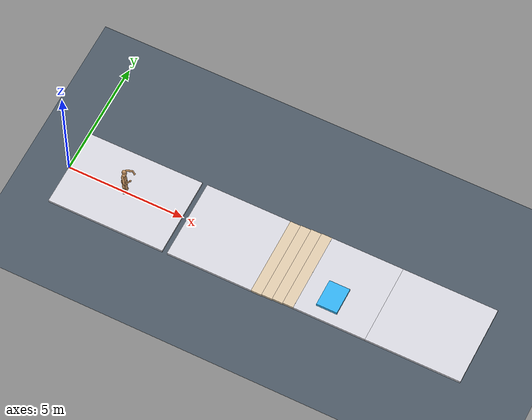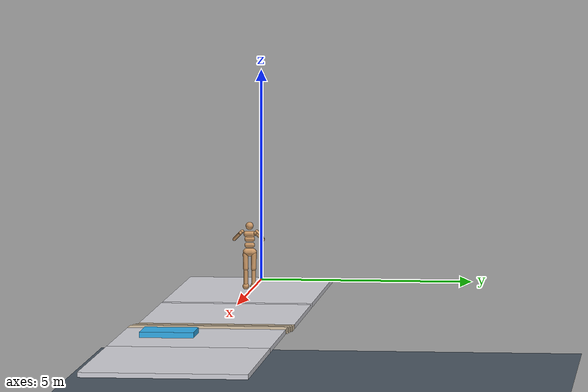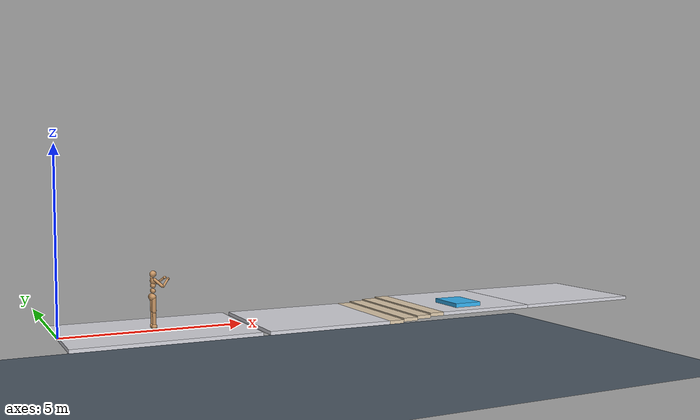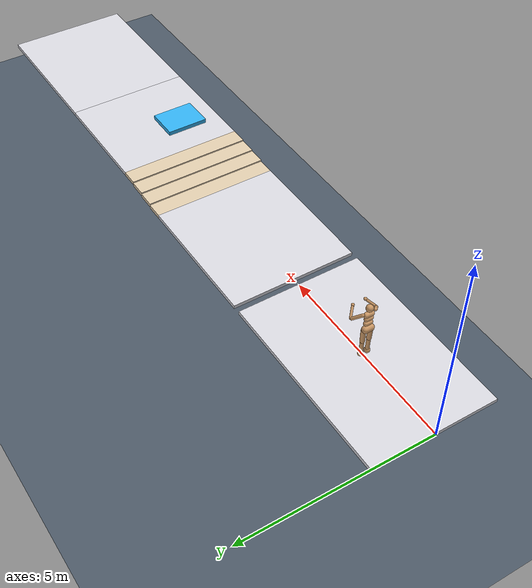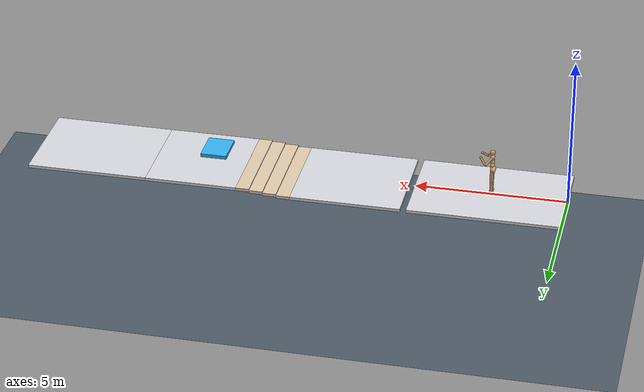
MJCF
<mujoco model="parkour_humanoid">
    <compiler angle="degree" inertiafromgeom="true"/>
    <default>
        <joint armature="1" damping="1" limited="true"/>
        <geom conaffinity="1" condim="3" friction="1.2 .1 .1" margin="0.001" material="geom" rgba="0.8 0.6 .4 1"/>
        <motor ctrllimited="true" ctrlrange="-.4 .4"/>
    </default>
    <option integrator="RK4" timestep="0.003"/>
    <visual>
        <headlight ambient="0.5 0.5 0.5" diffuse="0.8 0.8 0.8" specular="0.2 0.2 0.2"/>
        <map force="0.1" znear="0.05" zfar="100.0"/>
        <rgba haze="0.15 0.25 0.35 1"/>
        <quality shadowsize="2048"/>
        <global offwidth="640" offheight="480"/>
    </visual>
    <asset>
        <texture builtin="gradient" height="100" rgb1=".55 .70 .85" rgb2=".25 .40 .55" type="skybox" width="100"/>
        <texture builtin="flat" height="1278" mark="cross" markrgb="1 1 1" name="texgeom" random="0.01" rgb1="0.8 0.6 0.4" rgb2="0.8 0.6 0.4" type="cube" width="127"/>
        <texture builtin="checker" height="100" name="texplane" rgb1="0.2 0.25 0.3" rgb2="0.3 0.35 0.4" type="2d" width="100"/>
        <texture name="texterrain" builtin="flat" rgb1="0.85 0.85 0.88" rgb2="0.75 0.75 0.78" type="cube" width="127" height="127"/>
        <material name="MatPlane" reflectance="0.2" shininess="0.5" specular="0.5" texrepeat="60 60" texture="texplane"/>
        <material name="geom" texture="texgeom" texuniform="true"/>
        <material name="terrain_mat" texture="texterrain" texuniform="true" rgba="0.85 0.85 0.88 1"/>
    </asset>
    <worldbody>
        <light directional="true" diffuse="0.9 0.9 0.9" specular="0.3 0.3 0.3" pos="0 0 8" dir="0 0 -1"/>
        <light directional="true" diffuse="0.6 0.6 0.6" specular="0.2 0.2 0.2" pos="10 -10 10" dir="-0.3 0.5 -1"/>
        <!-- Death plane: gap / fall detection (in group 2 for raycast) -->
        <geom name="death_plane" type="plane" pos="0 0 -2" size="200 200 0.1" group="2" rgba="0.3 0.35 0.4 1" material="MatPlane"/>
        <!-- Procedural terrain geoms directly in worldbody (group 2) -->
        <geom name="t_0_0" type="box" pos="2.5000 0.0000 0.0000" size="2.5000 1.7000 0.0500" group="2" rgba="0.85 0.85 0.88 1"/>
        <geom name="t_2_0" type="box" pos="7.0233 0.0000 0.0000" size="1.8162 1.7000 0.0500" group="2" rgba="0.85 0.85 0.88 1"/>
        <geom name="t_3_0" type="box" pos="9.0645 0.0000 0.0000" size="0.2250 1.7000 0.0500" group="2" rgba="0.88 0.80 0.68 1"/>
        <geom name="t_3_1" type="box" pos="9.5145 0.0000 0.0400" size="0.2250 1.7000 0.0500" group="2" rgba="0.88 0.80 0.68 1"/>
        <geom name="t_3_2" type="box" pos="9.9645 0.0000 0.0800" size="0.2250 1.7000 0.0500" group="2" rgba="0.88 0.80 0.68 1"/>
        <geom name="t_3_3" type="box" pos="10.4145 0.0000 0.1200" size="0.2250 1.7000 0.0500" group="2" rgba="0.88 0.80 0.68 1"/>
        <geom name="t_4_0" type="box" pos="12.1607 0.0000 0.1200" size="1.5211 1.7000 0.0500" group="2" rgba="0.85 0.85 0.88 1"/>
        <geom name="t_4_1" type="box" pos="11.8276 -0.6451 0.2297" size="0.4370 0.5726 0.0597" group="2" rgba="0.20 0.70 0.95 1"/>
        <geom name="t_5_0" type="box" pos="15.6818 0.0000 0.1200" size="2.0000 1.7000 0.0500" group="2" rgba="0.85 0.85 0.88 1"/>
        <!-- Humanoid body hierarchy (13 bodies, identical to Humanoid-v5) -->
        <body name="torso" pos="2.5 0 1.35">
            <camera name="track" mode="trackcom" pos="0 -4.5 0" xyaxes="1 0 0 0 0 1"/>
            <joint armature="0" damping="0" limited="false" name="root" pos="0 0 0" stiffness="0" type="free"/>
            <geom fromto="0 -.07 0 0 .07 0" name="torso1" size="0.07" type="capsule"/>
            <geom name="head" pos="0 0 .19" size=".09" type="sphere" user="258"/>
            <geom fromto="-.01 -.06 -.12 -.01 .06 -.12" name="uwaist" size="0.06" type="capsule"/>
            <body name="lwaist" pos="-.01 0 -0.260" quat="1.000 0 -0.002 0">
                <geom fromto="0 -.06 0 0 .06 0" name="lwaist" size="0.06" type="capsule"/>
                <joint armature="0.02" axis="0 0 1" damping="5" name="abdomen_z" pos="0 0 0.065" range="-45 45" stiffness="20" type="hinge"/>
                <joint armature="0.02" axis="0 1 0" damping="5" name="abdomen_y" pos="0 0 0.065" range="-75 30" stiffness="10" type="hinge"/>
                <body name="pelvis" pos="0 0 -0.165" quat="1.000 0 -0.002 0">
                    <joint armature="0.02" axis="1 0 0" damping="5" name="abdomen_x" pos="0 0 0.1" range="-35 35" stiffness="10" type="hinge"/>
                    <geom fromto="-.02 -.07 0 -.02 .07 0" name="butt" size="0.09" type="capsule"/>
                    <body name="right_thigh" pos="0 -0.1 -0.04">
                        <joint armature="0.01" axis="1 0 0" damping="5" name="right_hip_x" pos="0 0 0" range="-25 5" stiffness="10" type="hinge"/>
                        <joint armature="0.01" axis="0 0 1" damping="5" name="right_hip_z" pos="0 0 0" range="-60 35" stiffness="10" type="hinge"/>
                        <joint armature="0.0080" axis="0 1 0" damping="5" name="right_hip_y" pos="0 0 0" range="-110 20" stiffness="20" type="hinge"/>
                        <geom fromto="0 0 0 0 0.01 -.34" name="right_thigh1" size="0.06" type="capsule"/>
                        <body name="right_shin" pos="0 0.01 -0.403">
                            <joint armature="0.0060" axis="0 -1 0" name="right_knee" pos="0 0 .02" range="-160 -2" type="hinge"/>
                            <geom fromto="0 0 0 0 0 -.3" name="right_shin1" size="0.049" type="capsule"/>
                            <body name="right_foot" pos="0 0 -0.45">
                                <geom name="right_foot" pos="0 0 0.1" size="0.075" type="sphere" user="0"/>
                            </body>
                        </body>
                    </body>
                    <body name="left_thigh" pos="0 0.1 -0.04">
                        <joint armature="0.01" axis="-1 0 0" damping="5" name="left_hip_x" pos="0 0 0" range="-25 5" stiffness="10" type="hinge"/>
                        <joint armature="0.01" axis="0 0 -1" damping="5" name="left_hip_z" pos="0 0 0" range="-60 35" stiffness="10" type="hinge"/>
                        <joint armature="0.01" axis="0 1 0" damping="5" name="left_hip_y" pos="0 0 0" range="-110 20" stiffness="20" type="hinge"/>
                        <geom fromto="0 0 0 0 -0.01 -.34" name="left_thigh1" size="0.06" type="capsule"/>
                        <body name="left_shin" pos="0 -0.01 -0.403">
                            <joint armature="0.0060" axis="0 -1 0" name="left_knee" pos="0 0 .02" range="-160 -2" stiffness="1" type="hinge"/>
                            <geom fromto="0 0 0 0 0 -.3" name="left_shin1" size="0.049" type="capsule"/>
                            <body name="left_foot" pos="0 0 -0.45">
                                <geom name="left_foot" type="sphere" size="0.075" pos="0 0 0.1" user="0"/>
                            </body>
                        </body>
                    </body>
                </body>
            </body>
            <body name="right_upper_arm" pos="0 -0.17 0.06">
                <joint armature="0.0068" axis="2 1 1" name="right_shoulder1" pos="0 0 0" range="-85 60" stiffness="1" type="hinge"/>
                <joint armature="0.0051" axis="0 -1 1" name="right_shoulder2" pos="0 0 0" range="-85 60" stiffness="1" type="hinge"/>
                <geom fromto="0 0 0 .16 -.16 -.16" name="right_uarm1" size="0.04 0.16" type="capsule"/>
                <body name="right_lower_arm" pos=".18 -.18 -.18">
                    <joint armature="0.0028" axis="0 -1 1" name="right_elbow" pos="0 0 0" range="-90 50" stiffness="0" type="hinge"/>
                    <geom fromto="0.01 0.01 0.01 .17 .17 .17" name="right_larm" size="0.031" type="capsule"/>
                    <geom name="right_hand" pos=".18 .18 .18" size="0.04" type="sphere"/>
                    <camera pos="0 0 0"/>
                </body>
            </body>
            <body name="left_upper_arm" pos="0 0.17 0.06">
                <joint armature="0.0068" axis="2 -1 1" name="left_shoulder1" pos="0 0 0" range="-60 85" stiffness="1" type="hinge"/>
                <joint armature="0.0051" axis="0 1 1" name="left_shoulder2" pos="0 0 0" range="-60 85" stiffness="1" type="hinge"/>
                <geom fromto="0 0 0 .16 .16 -.16" name="left_uarm1" size="0.04 0.16" type="capsule"/>
                <body name="left_lower_arm" pos=".18 .18 -.18">
                    <joint armature="0.0028" axis="0 -1 -1" name="left_elbow" pos="0 0 0" range="-90 50" stiffness="0" type="hinge"/>
                    <geom fromto="0.01 -0.01 0.01 .17 -.17 .17" name="left_larm" size="0.031" type="capsule"/>
                    <geom name="left_hand" pos=".18 -.18 .18" size="0.04" type="sphere"/>
                </body>
            </body>
        </body>
    </worldbody>
    <tendon>
        <fixed name="left_hipknee">
            <joint coef="-1" joint="left_hip_y"/>
            <joint coef="1" joint="left_knee"/>
        </fixed>
        <fixed name="right_hipknee">
            <joint coef="-1" joint="right_hip_y"/>
            <joint coef="1" joint="right_knee"/>
        </fixed>
    </tendon>
    <actuator>
        <motor gear="100" joint="abdomen_y" name="abdomen_y"/>
        <motor gear="100" joint="abdomen_z" name="abdomen_z"/>
        <motor gear="100" joint="abdomen_x" name="abdomen_x"/>
        <motor gear="100" joint="right_hip_x" name="right_hip_x"/>
        <motor gear="100" joint="right_hip_z" name="right_hip_z"/>
        <motor gear="300" joint="right_hip_y" name="right_hip_y"/>
        <motor gear="200" joint="right_knee" name="right_knee"/>
        <motor gear="100" joint="left_hip_x" name="left_hip_x"/>
        <motor gear="100" joint="left_hip_z" name="left_hip_z"/>
        <motor gear="300" joint="left_hip_y" name="left_hip_y"/>
        <motor gear="200" joint="left_knee" name="left_knee"/>
        <motor gear="25" joint="right_shoulder1" name="right_shoulder1"/>
        <motor gear="25" joint="right_shoulder2" name="right_shoulder2"/>
        <motor gear="25" joint="right_elbow" name="right_elbow"/>
        <motor gear="25" joint="left_shoulder1" name="left_shoulder1"/>
        <motor gear="25" joint="left_shoulder2" name="left_shoulder2"/>
        <motor gear="25" joint="left_elbow" name="left_elbow"/>
    </actuator>
</mujoco>
